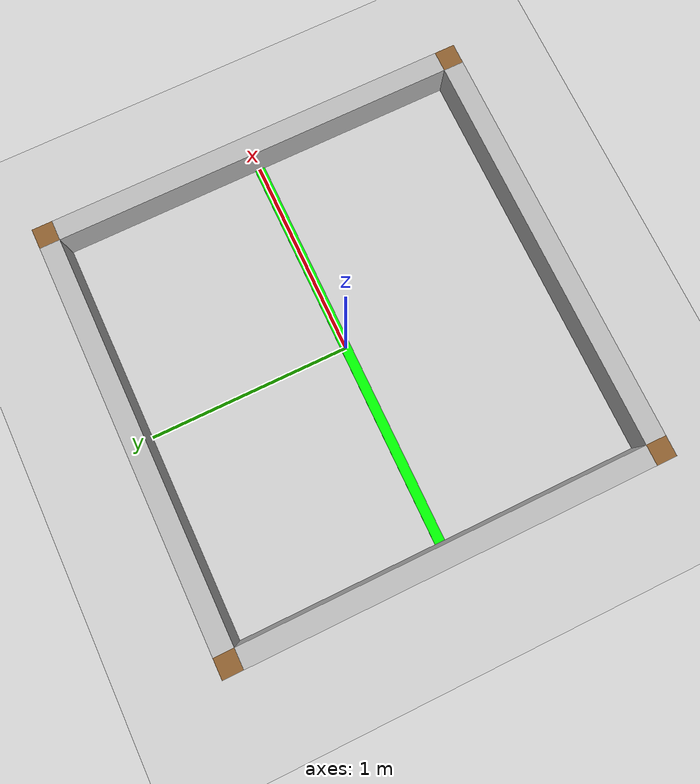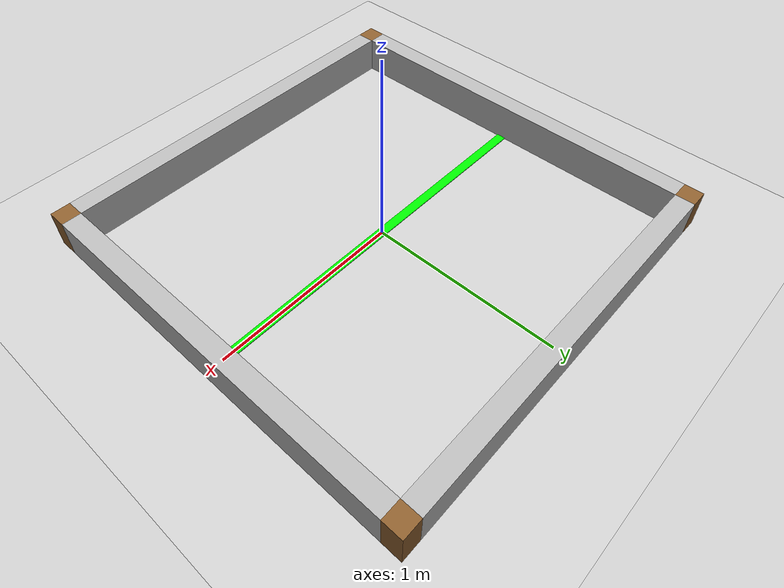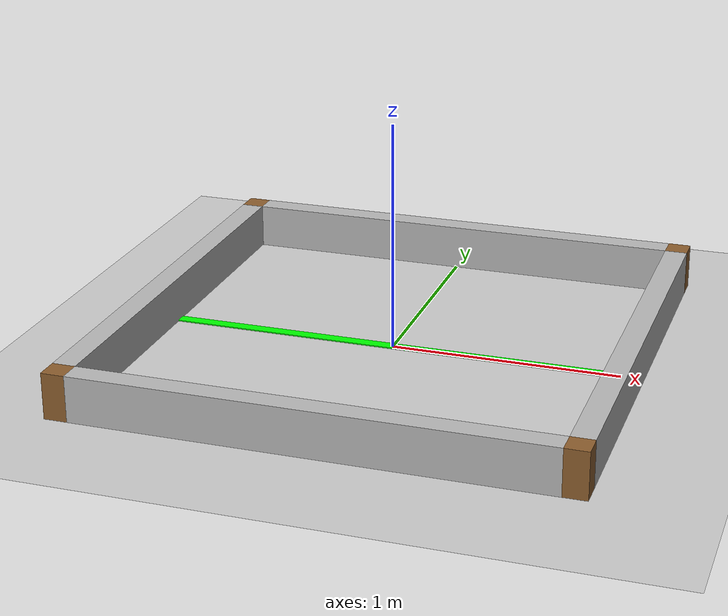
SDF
<sdf version="1.7">
 <world name="default">
  <light name="sun" type="directional">
   <pose>0 0 10 0 0 0</pose>
   <diffuse>0.8 0.8 0.8 1</diffuse>
   <specular>0.2 0.2 0.2 1</specular>
   <attenuation>
    <range>1000</range>
    <constant>0.9</constant>
    <linear>0.01</linear>
    <quadratic>0.001</quadratic>
   </attenuation>
   <direction>-0.5 0.1 -0.9</direction>
  </light>
  <model name="ground_plane">
   <static>1</static>
   <link name="link">
    <collision name="collision">
     <geometry><plane><normal>0 0 1</normal><size>100 100</size></plane></geometry>
    </collision>
    <visual name="visual">
     <cast_shadows>0</cast_shadows>
     <geometry><plane><normal>0 0 1</normal><size>100 100</size></plane></geometry>
     <material>
      <script><uri>file://media/materials/scripts/gazebo.material</uri><name>Gazebo/Grey</name></script>
     </material>
    </visual>
   </link>
  </model>
  <gravity>0 0 -9.8</gravity>
  <model name="wall_north">
   <static>1</static>
   <pose>0 1.05 0.10 0 0 0</pose>
   <link name="link">
    <collision name="collision"><geometry><box><size>2.0 0.10 0.20</size></box></geometry></collision>
    <visual name="visual">
     <geometry><box><size>2.0 0.10 0.20</size></box></geometry>
     <material>
      <script>
       <uri>model://arena_wall_north/materials/scripts/marker_7.material</uri>
       <name>ArUcoMarker7</name>
      </script>
     </material>
    </visual>
   </link>
  </model>
  <model name="wall_south">
   <static>1</static>
   <pose>0 -1.05 0.10 0 0 0</pose>
   <link name="link">
    <collision name="collision"><geometry><box><size>2.0 0.10 0.20</size></box></geometry></collision>
    <visual name="visual">
     <geometry><box><size>2.0 0.10 0.20</size></box></geometry>
     <material>
      <script>
       <uri>model://arena_wall_south/materials/scripts/marker_42.material</uri>
       <name>ArUcoMarker42</name>
      </script>
     </material>
    </visual>
   </link>
  </model>
  <model name="wall_east">
   <static>1</static>
   <pose>1.05 0 0.10 0 0 0</pose>
   <link name="link">
    <collision name="collision"><geometry><box><size>0.10 2.0 0.20</size></box></geometry></collision>
    <visual name="visual">
     <geometry><box><size>0.10 2.0 0.20</size></box></geometry>
     <material>
      <script>
       <uri>model://arena_wall_east/materials/scripts/marker_23.material</uri>
       <name>ArUcoMarker23</name>
      </script>
     </material>
    </visual>
   </link>
  </model>
  <model name="wall_west">
   <static>1</static>
   <pose>-1.05 0 0.10 0 0 0</pose>
   <link name="link">
    <collision name="collision"><geometry><box><size>0.10 2.0 0.20</size></box></geometry></collision>
    <visual name="visual">
     <geometry><box><size>0.10 2.0 0.20</size></box></geometry>
     <material>
      <script>
       <uri>model://arena_wall_west/materials/scripts/marker_0.material</uri>
       <name>ArUcoMarker0</name>
      </script>
     </material>
    </visual>
   </link>
  </model>
  <model name="green_line">
   <static>1</static>
   <pose>0 0 0.003 0 0 0</pose>
   <link name="link">
    <visual name="visual">
     <geometry><box><size>2.0 0.05 0.005</size></box></geometry>
     <material>
      <ambient>0 1 0 1</ambient>
      <diffuse>0 1 0 1</diffuse>
      <specular>0.1 0.1 0.1 1</specular>
      <emissive>0 0 0 1</emissive>
     </material>
    </visual>
   </link>
  </model>
  <model name="wall_corner_ne">
   <static>1</static>
   <pose>1.05 1.05 0.10 0 0 0</pose>
   <link name="link">
    <collision name="collision"><geometry><box><size>0.10 0.10 0.20</size></box></geometry></collision>
    <visual name="visual">
     <geometry><box><size>0.10 0.10 0.20</size></box></geometry>
     <material>
      <ambient>0.45 0.30 0.15 1</ambient>
      <diffuse>0.55 0.37 0.18 1</diffuse>
      <specular>0.05 0.05 0.05 1</specular>
      <emissive>0 0 0 1</emissive>
     </material>
    </visual>
   </link>
  </model>
  <model name="wall_corner_nw">
   <static>1</static>
   <pose>-1.05 1.05 0.10 0 0 0</pose>
   <link name="link">
    <collision name="collision"><geometry><box><size>0.10 0.10 0.20</size></box></geometry></collision>
    <visual name="visual">
     <geometry><box><size>0.10 0.10 0.20</size></box></geometry>
     <material>
      <ambient>0.45 0.30 0.15 1</ambient>
      <diffuse>0.55 0.37 0.18 1</diffuse>
      <specular>0.05 0.05 0.05 1</specular>
      <emissive>0 0 0 1</emissive>
     </material>
    </visual>
   </link>
  </model>
  <model name="wall_corner_se">
   <static>1</static>
   <pose>1.05 -1.05 0.10 0 0 0</pose>
   <link name="link">
    <collision name="collision"><geometry><box><size>0.10 0.10 0.20</size></box></geometry></collision>
    <visual name="visual">
     <geometry><box><size>0.10 0.10 0.20</size></box></geometry>
     <material>
      <ambient>0.45 0.30 0.15 1</ambient>
      <diffuse>0.55 0.37 0.18 1</diffuse>
      <specular>0.05 0.05 0.05 1</specular>
      <emissive>0 0 0 1</emissive>
     </material>
    </visual>
   </link>
  </model>
  <model name="wall_corner_sw">
   <static>1</static>
   <pose>-1.05 -1.05 0.10 0 0 0</pose>
   <link name="link">
    <collision name="collision"><geometry><box><size>0.10 0.10 0.20</size></box></geometry></collision>
    <visual name="visual">
     <geometry><box><size>0.10 0.10 0.20</size></box></geometry>
     <material>
      <ambient>0.45 0.30 0.15 1</ambient>
      <diffuse>0.55 0.37 0.18 1</diffuse>
      <specular>0.05 0.05 0.05 1</specular>
      <emissive>0 0 0 1</emissive>
     </material>
    </visual>
   </link>
  </model>
 </world>
</sdf>
